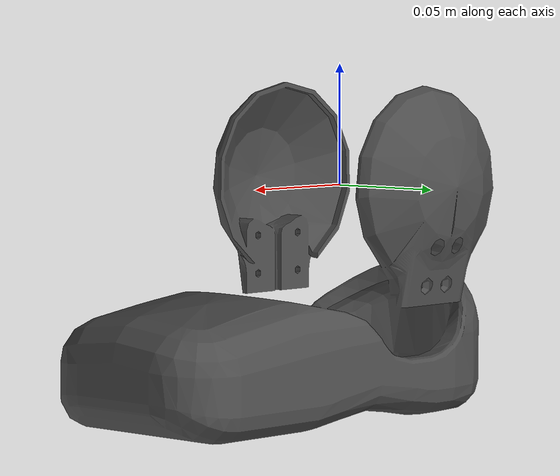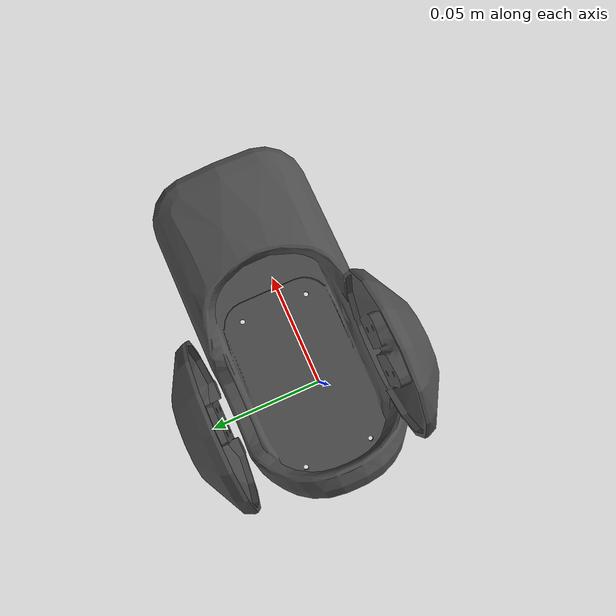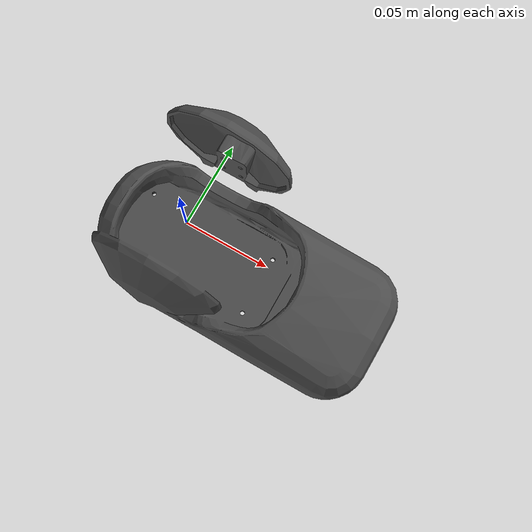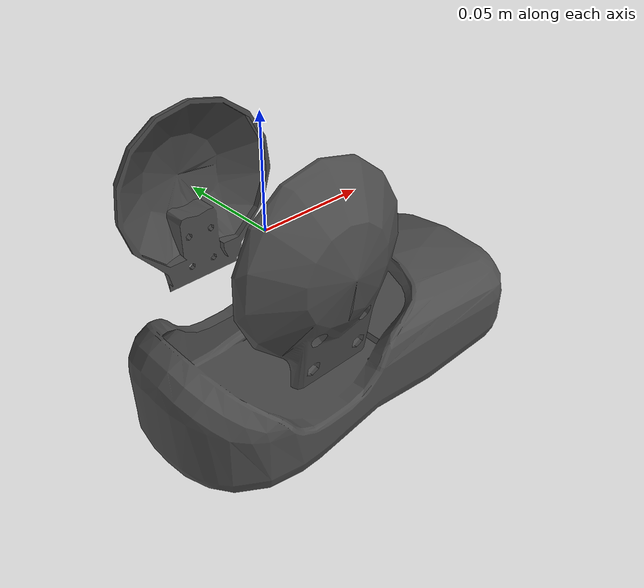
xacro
<?xml version="1.0"?>
<robot xmlns:xacro="http://ros.org/wiki/xacro">

    <link name ="LFoot">
      <inertial>
        <origin xyz="0.0096921046 0.0090460227 -0.043062308" rpy="0 0 0"/>
        <mass value="0.66646684"/>
        <inertia ixx="0.0012944808"  ixy="9.2387693E-5"  ixz="2.0080105E-4" iyy="0.0015851846" iyz="-2.7599327E-4" izz="0.0013326766" />
      </inertial>
      <visual>
        <origin xyz="0.0 -0.0726 -0.0932" rpy="0 0 -3.14159265359"/>
        <material name="dark_grey"/>
        <geometry name="LFoot_visual">
          <mesh filename="package://coman_urdf/meshes/collada/Lfoot.stl" scale="0.03937 0.03937 0.03937" />
        </geometry>
      </visual>
      <collision>
        <origin xyz="0.0 -0.0726 -0.0932" rpy="0 0 -3.14159265359"/>
        <geometry name="LFoot_collision">
          <mesh filename="package://coman_urdf/meshes/collada/simple/simple_asm0001_collada_01_prt.stl" scale="0.03937 0.03937 0.03937" />
        </geometry>
      </collision>
    </link>

</robot>
